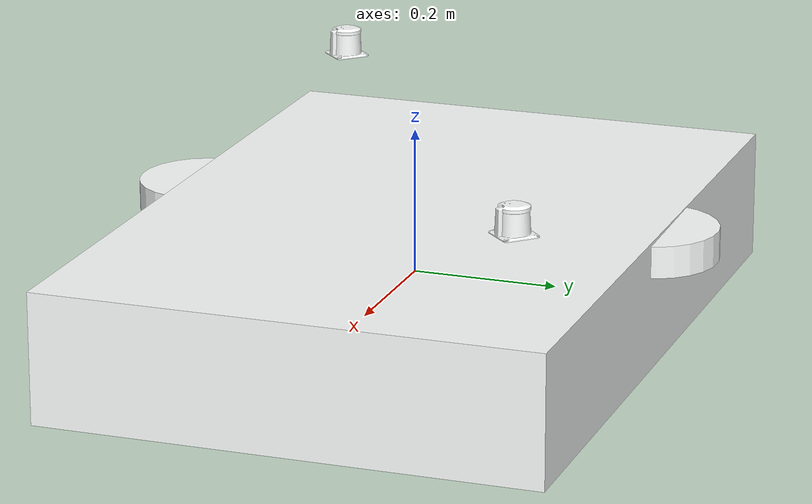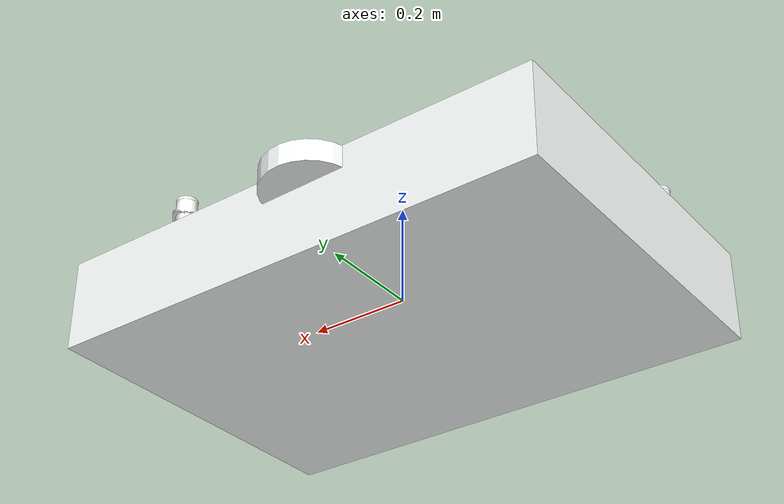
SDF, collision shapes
<sdf version='1.11'>
  <model name='TinyRobot'>
    <plugin name="slotcar" filename="libslotcar.so">

      <nominal_drive_speed>0.5</nominal_drive_speed>
      <nominal_drive_acceleration>0.25</nominal_drive_acceleration>
      <max_drive_acceleration>0.75</max_drive_acceleration>

      <nominal_turn_speed>0.6</nominal_turn_speed>
      <nominal_turn_acceleration>1.5</nominal_turn_acceleration>
      <max_turn_acceleration>2.0</max_turn_acceleration>

      <tire_radius>0.9</tire_radius>
      <base_width>0.053</base_width>

      <stop_distance>0.75</stop_distance>
      <stop_radius>0.75</stop_radius>

      <!-- Can the robot drive backwards -->
      <reversible>true</reversible>

      <!-- Battery params -->
      <nominal_voltage>12.0</nominal_voltage>
      <nominal_capacity>24.0</nominal_capacity>
      <charging_current>5.0</charging_current>

      <!-- Physical params -->
      <mass>20.0</mass>
      <inertia>10.0</inertia>
      <friction_coefficient>0.22</friction_coefficient>

      <!-- Power systems -->
      <nominal_power>20.0</nominal_power>

    </plugin>
    <link name='base_footprint'>
      <inertial>
        <pose>-0.015973971021848658 -0.002675428771750503 0.077327065198417783 0 0 0</pose>
        <mass>100.29998000000001</mass>
        <inertia>
          <ixx>5.9433213170782722</ixx>
          <ixy>-0.031925225439520387</ixy>
          <ixz>0.013588399520510219</ixz>
          <iyy>11.655851867180321</iyy>
          <iyz>0.00088742370452402769</iyz>
          <izz>16.700056877774681</izz>
        </inertia>
      </inertial>

      <collision name='base_footprint_fixed_joint_lump__base_link_collision'>
        <pose>0 0 0 0 0 0</pose>
        <geometry>
          <box>
            <size>1 0.68999999999999995 0.17999999999999999</size>
          </box>
        </geometry>
      </collision>
      <collision name='base_footprint_fixed_joint_lump__lidar_back_link_collision_1'>
        <pose>-0.41524 -0.25105 0.218 0 0 0</pose>
        <geometry>
          <mesh>
            <scale>1 1 1</scale>
            <uri>file:///home/assem/ros2_ws/install/yahboom_rosmaster_description/share/yahboom_rosmaster_description/meshes/lidar_back_link.STL</uri>
          </mesh>
        </geometry>
      </collision>
      <collision name='base_footprint_fixed_joint_lump__lidar_front_link_collision_2'>
        <pose>0.32486999999999999 0.24906 0.218 0 0 0</pose>
        <geometry>
          <mesh>
            <scale>1 1 1</scale>
            <uri>file:///home/assem/ros2_ws/install/yahboom_rosmaster_description/share/yahboom_rosmaster_description/meshes/lidar_front_link.STL</uri>
          </mesh>
        </geometry>
      </collision>

      <visual name='base_footprint_fixed_joint_lump__base_link_visual'>
        <pose>0 0 0 0 0 0</pose>
        <geometry>
          <mesh>
            <scale>1 1 1</scale>
            <uri>file:///home/assem/ros2_ws/install/yahboom_rosmaster_description/share/yahboom_rosmaster_description/meshes/base_link.STL</uri>
          </mesh>
        </geometry>
        <material>
          <diffuse>0.990199983 1 1 1</diffuse>
          <ambient>0.990199983 1 1 1</ambient>
        </material>
      </visual>

      <visual name='base_footprint_fixed_joint_lump__lidar_back_link_visual_1'>
        <pose>-0.41524 -0.25105 0.218 0 0 0</pose>
        <geometry>
          <mesh>
            <scale>1 1 1</scale>
            <uri>file:///home/assem/ros2_ws/install/yahboom_rosmaster_description/share/yahboom_rosmaster_description/meshes/lidar_back_link.STL</uri>
          </mesh>
        </geometry>
        <material>
          <diffuse>0.990199983 1 1 1</diffuse>
          <ambient>0.990199983 1 1 1</ambient>
        </material>
      </visual>

      <visual name='base_footprint_fixed_joint_lump__lidar_front_link_visual_2'>
        <pose>0.32486999999999999 0.24906 0.218 0 0 0</pose>
        <geometry>
          <mesh>
            <scale>1 1 1</scale>
            <uri>file:///home/assem/ros2_ws/install/yahboom_rosmaster_description/share/yahboom_rosmaster_description/meshes/lidar_front_link.STL</uri>
          </mesh>
        </geometry>
        <material>
          <diffuse>0.990199983 1 1 1</diffuse>
          <ambient>0.990199983 1 1 1</ambient>
        </material>
      </visual>
    </link>

    <joint name='BL_wheel_link_joint' type='revolute'>
      <pose relative_to='base_footprint'>-0.26300000000000001 0.27088000000000001 0.0121 0.00061433000000000006 0.019368000000000017 0.070225999999999997</pose>
      <parent>base_footprint</parent>
      <child>BL_wheel_link</child>
      <axis>
        <xyz>-0.070154999999999995 -0.99753999999999998 -0.00074611999999999996</xyz>
        <limit>
          <effort>150</effort>
          <velocity>15.56</velocity>
          <lower>-inf</lower>
          <upper>inf</upper>
        </limit>
        <dynamics>
          <damping>0.050000000000000003</damping>
          <friction>0.10000000000000001</friction>
          <spring_reference>0</spring_reference>
          <spring_stiffness>0</spring_stiffness>
        </dynamics>
      </axis>
    </joint>
    <link name='BL_wheel_link'>
      <pose relative_to='BL_wheel_link_joint'>0 0 0 0 0 0</pose>
      <inertial>
        <pose>-0.0016927999999999999 -0.024070000000000001 -1.8003e-05 0 0 0</pose>
        <mass>0.76207999999999998</mass>
        <inertia>
          <ixx>0.0001995</ixx>
          <ixy>1.2055999999999999e-05</ixy>
          <ixz>7.1848000000000003e-09</ixz>
          <iyy>0.00037007000000000001</iyy>
          <iyz>1.2834e-07</iyz>
          <izz>0.00019866</izz>
        </inertia>
      </inertial>
      <collision name='BL_wheel_link_collision'>
        <pose>0 0 0 0 0 0</pose>
        <geometry>
          <cylinder>
            <length>0.050000000000000003</length>
            <radius>0.035000000000000003</radius>
          </cylinder>
        </geometry>
      </collision>
      <visual name='BL_wheel_link_visual'>
        <pose>0 0 0 0 0 0</pose>
        <geometry>
          <mesh>
            <scale>1 1 1</scale>
            <uri>file:///home/assem/ros2_ws/install/yahboom_rosmaster_description/share/yahboom_rosmaster_description/meshes/BL_wheel_link.STL</uri>
          </mesh>
        </geometry>
        <material>
          <diffuse>0.990199983 1 1 1</diffuse>
          <ambient>0.990199983 1 1 1</ambient>
        </material>
      </visual>
    </link>
    <joint name='BR_wheel_link_joint' type='revolute'>
      <pose relative_to='base_footprint'>-0.30299999999999999 -0.27738000000000002 0.0121 0.00061433000000000006 0.019368000000000017 0.070225999999999997</pose>
      <parent>base_footprint</parent>
      <child>BR_wheel_link</child>
      <axis>
        <xyz>0.070154999999999995 0.99753999999999998 0.00074611999999999996</xyz>
        <limit>
          <effort>150</effort>
          <velocity>15.56</velocity>
          <lower>-inf</lower>
          <upper>inf</upper>
        </limit>
        <dynamics>
          <damping>0.050000000000000003</damping>
          <friction>0.10000000000000001</friction>
          <spring_reference>0</spring_reference>
          <spring_stiffness>0</spring_stiffness>
        </dynamics>
      </axis>
    </joint>
    <link name='BR_wheel_link'>
      <pose relative_to='BR_wheel_link_joint'>0 0 0 0 0 0</pose>
      <inertial>
        <pose>0.0016929 0.024070999999999999 1.8005000000000001e-05 0 0 0</pose>
        <mass>0.76207999999999998</mass>
        <inertia>
          <ixx>0.0001995</ixx>
          <ixy>1.2055999999999999e-05</ixy>
          <ixz>7.5814000000000003e-09</ixz>
          <iyy>0.00037007000000000001</iyy>
          <iyz>1.2832e-07</iyz>
          <izz>0.00019866</izz>
        </inertia>
      </inertial>
      <collision name='BR_wheel_link_collision'>
        <pose>0 0 0 0 0 0</pose>
        <geometry>
          <cylinder>
            <length>0.050000000000000003</length>
            <radius>0.035000000000000003</radius>
          </cylinder>
        </geometry>
      </collision>
      <visual name='BR_wheel_link_visual'>
        <pose>0 0 0 0 0 0</pose>
        <geometry>
          <mesh>
            <scale>1 1 1</scale>
            <uri>file:///home/assem/ros2_ws/install/yahboom_rosmaster_description/share/yahboom_rosmaster_description/meshes/BR_wheel_link.STL</uri>
          </mesh>
        </geometry>
        <material>
          <diffuse>0.990199983 1 1 1</diffuse>
          <ambient>0.990199983 1 1 1</ambient>
        </material>
      </visual>
    </link>
    <joint name='FL_wheel_link_joint' type='revolute'>
      <pose relative_to='base_footprint'>0.217 0.27101999999999998 0.0121 0 0 0.070213999999999999</pose>
      <parent>base_footprint</parent>
      <child>FL_wheel_link</child>
      <axis>
        <xyz>-0.070155999999999996 -0.99753999999999998 0</xyz>
        <limit>
          <effort>150</effort>
          <velocity>15.56</velocity>
          <lower>-inf</lower>
          <upper>inf</upper>
        </limit>
        <dynamics>
          <damping>0.050000000000000003</damping>
          <friction>0.10000000000000001</friction>
          <spring_reference>0</spring_reference>
          <spring_stiffness>0</spring_stiffness>
        </dynamics>
      </axis>
    </joint>
    <link name='FL_wheel_link'>
      <pose relative_to='FL_wheel_link_joint'>0 0 0 0 0 0</pose>
      <inertial>
        <pose>-0.0016927999999999999 -0.024070000000000001 5.0220999999999996e-10 0 0 0</pose>
        <mass>0.76207999999999998</mass>
        <inertia>
          <ixx>0.0001995</ixx>
          <ixy>1.2055999999999999e-05</ixy>
          <ixz>-1.3667e-09</ixz>
          <iyy>0.00037007000000000001</iyy>
          <iyz>9.6114e-11</iyz>
          <izz>0.00019866</izz>
        </inertia>
      </inertial>
      <collision name='FL_wheel_link_collision'>
        <pose>0 0 0 0 0 0</pose>
        <geometry>
          <cylinder>
            <length>0.050000000000000003</length>
            <radius>0.035000000000000003</radius>
          </cylinder>
        </geometry>
      </collision>
      <visual name='FL_wheel_link_visual'>
        <pose>0 0 0 0 0 0</pose>
        <geometry>
          <mesh>
            <scale>1 1 1</scale>
            <uri>file:///home/assem/ros2_ws/install/yahboom_rosmaster_description/share/yahboom_rosmaster_description/meshes/FL_wheel_link.STL</uri>
          </mesh>
        </geometry>
        <material>
          <diffuse>0.990199983 1 1 1</diffuse>
          <ambient>0.990199983 1 1 1</ambient>
        </material>
      </visual>
    </link>
    <joint name='FR_wheel_link_joint' type='revolute'>
      <pose relative_to='base_footprint'>0.17699999999999999 -0.27738000000000002 0.0121 0.00061433000000000006 0.019368000000000017 0.070225999999999997</pose>
      <parent>base_footprint</parent>
      <child>FR_wheel_link</child>
      <axis>
        <xyz>0.070154999999999995 0.99753999999999998 0.00074611999999999996</xyz>
        <limit>
          <effort>150</effort>
          <velocity>15.56</velocity>
          <lower>-inf</lower>
          <upper>inf</upper>
        </limit>
        <dynamics>
          <damping>0.050000000000000003</damping>
          <friction>0.10000000000000001</friction>
          <spring_reference>0</spring_reference>
          <spring_stiffness>0</spring_stiffness>
        </dynamics>
      </axis>
    </joint>
    <link name='FR_wheel_link'>
      <pose relative_to='FR_wheel_link_joint'>0 0 0 0 0 0</pose>
      <inertial>
        <pose>0.0016929 0.024070999999999999 1.8005000000000001e-05 0 0 0</pose>
        <mass>0.76207999999999998</mass>
        <inertia>
          <ixx>0.0001995</ixx>
          <ixy>1.2055999999999999e-05</ixy>
          <ixz>7.5814000000000003e-09</ixz>
          <iyy>0.00037007000000000001</iyy>
          <iyz>1.2832e-07</iyz>
          <izz>0.00019866</izz>
        </inertia>
      </inertial>
      <collision name='FR_wheel_link_collision'>
        <pose>0 0 0 0 0 0</pose>
        <geometry>
          <cylinder>
            <length>0.050000000000000003</length>
            <radius>0.035000000000000003</radius>
          </cylinder>
        </geometry>
      </collision>
      <visual name='FR_wheel_link_visual'>
        <pose>0 0 0 0 0 0</pose>
        <geometry>
          <mesh>
            <scale>1 1 1</scale>
            <uri>file:///home/assem/ros2_ws/install/yahboom_rosmaster_description/share/yahboom_rosmaster_description/meshes/FR_wheel_link.STL</uri>
          </mesh>
        </geometry>
        <material>
          <diffuse>0.990199983 1 1 1</diffuse>
          <ambient>0.990199983 1 1 1</ambient>
        </material>
      </visual>
    </link>
    <joint name='joint_tire_left' type='revolute'>
      <pose relative_to='base_footprint'>-0.043000999999999998 0.32282 0.065000000000000002 0.00061433000000000006 0.019368000000000017 0.070225999999999997</pose>
      <parent>base_footprint</parent>
      <child>left_wheel</child>
      <axis>
        <xyz>0 1 0</xyz>
        <limit>
          <lower>-1e+16</lower>
          <upper>1e+16</upper>
        </limit>
        <dynamics>
          <spring_reference>0</spring_reference>
          <spring_stiffness>0</spring_stiffness>
        </dynamics>
      </axis>
    </joint>
    <link name='left_wheel'>
      <pose relative_to='joint_tire_left'>0 0 0 0 0 0</pose>
      <inertial>
        <pose>-0.0014756999999999999 -0.020983000000000002 -1.5695000000000001e-05 0 0 0</pose>
        <mass>3.5</mass>
        <inertia>
          <ixx>0.0021513999999999999</ixx>
          <ixy>0.00013184000000000001</ixy>
          <ixz>1.0007e-07</ixz>
          <iyy>0.0040168000000000001</iyy>
          <iyz>1.3970999999999999e-06</iyz>
          <izz>0.0021423000000000002</izz>
        </inertia>
      </inertial>
      <collision name='left_wheel_collision'>
        <pose>0 0 0 0 0 0</pose>
        <geometry>
          <cylinder>
            <length>0.043999999999999997</length>
            <radius>0.089999999999999997</radius>
          </cylinder>
        </geometry>
        <surface>
          <contact>
            <ode>
              <kp>10000000.0</kp>
              <kd>1.0</kd>
            </ode>
          </contact>
          <friction>
            <ode>
              <mu>1</mu>
              <mu2>1</mu2>
              <fdir1>0 0 1</fdir1>
            </ode>
          </friction>
        </surface>
      </collision>
      <visual name='left_wheel_visual'>
        <pose>0 0 0 0 0 0</pose>
        <geometry>
          <mesh>
            <scale>1 1 1</scale>
            <uri>file:///home/assem/ros2_ws/install/yahboom_rosmaster_description/share/yahboom_rosmaster_description/meshes/ML_wheel_link.STL</uri>
          </mesh>
        </geometry>
        <material>
          <diffuse>0.990199983 1 1 1</diffuse>
          <ambient>0.990199983 1 1 1</ambient>
        </material>
      </visual>
    </link>
    <joint name='joint_tire_right' type='revolute'>
      <pose relative_to='base_footprint'>-0.043000999999999998 -0.32757999999999998 0.065000000000000002 0.00061433000000000006 0.019368000000000017 0.070225999999999997</pose>
      <parent>base_footprint</parent>
      <child>right_wheel</child>
      <axis>
        <xyz> 0 1 0 </xyz>
        <limit>
          <lower>-1e+16</lower>
          <upper>1e+16</upper>
        </limit>
        <dynamics>
          <spring_reference>0</spring_reference>
          <spring_stiffness>0</spring_stiffness>
        </dynamics>
      </axis>
    </joint>
    <link name='right_wheel'>
      <pose relative_to='joint_tire_right'>0 0 0 0 0 0</pose>
      <inertial>
        <pose>0.0014756999999999999 0.020983000000000002 1.5695000000000001e-05 0 0 0</pose>
        <mass>3.5</mass>
        <inertia>
          <ixx>0.0021513999999999999</ixx>
          <ixy>0.00013184000000000001</ixy>
          <ixz>9.2888000000000004e-08</ixz>
          <iyy>0.0040168000000000001</iyy>
          <iyz>1.4024999999999999e-06</iyz>
          <izz>0.0021423000000000002</izz>
        </inertia>
      </inertial>
      <collision name='right_wheel_collision'>
        <pose>0 0 0 0 0 0</pose>
        <geometry>
          <cylinder>
            <length>0.043999999999999997</length>
            <radius>0.089999999999999997</radius>
          </cylinder>
        </geometry>
        <surface>
          <contact>
            <ode>
              <kp>10000000.0</kp>
              <kd>1.0</kd>
            </ode>
          </contact>
          <friction>
            <ode>
              <mu>1</mu>
              <mu2>1</mu2>
              <fdir1>0 0 1</fdir1>
            </ode>
          </friction>
        </surface>
      </collision>
      <visual name='right_wheel_visual'>
        <pose>0 0 0 0 0 0</pose>
        <geometry>
          <mesh>
            <scale>1 1 1</scale>
            <uri>file:///home/assem/ros2_ws/install/yahboom_rosmaster_description/share/yahboom_rosmaster_description/meshes/MR_wheel_link.STL</uri>
          </mesh>
        </geometry>
        <material>
          <diffuse>0.990199983 1 1 1</diffuse>
          <ambient>0.990199983 1 1 1</ambient>
        </material>
      </visual>
    </link>
    <frame name='lidar_back_link_joint' attached_to='base_link'>
      <pose>-0.41524 -0.25105 0.218 0 0 0</pose>
    </frame>
    <frame name='lidar_back_link' attached_to='lidar_back_link_joint'>
      <pose>0 0 0 0 0 0</pose>
    </frame>
    <frame name='lidar_front_link_joint' attached_to='base_link'>
      <pose>0.32486999999999999 0.24906 0.218 0 0 0</pose>
    </frame>
    <frame name='lidar_front_link' attached_to='lidar_front_link_joint'>
      <pose>0 0 0 0 0 0</pose>
    </frame>
    <frame name='base_joint' attached_to='base_footprint'>
      <pose>0 0 0 0 0 0</pose>
    </frame>
    <frame name='base_link' attached_to='base_joint'>
      <pose>0 0 0 0 0 0</pose>
    </frame>
  </model>
</sdf>
